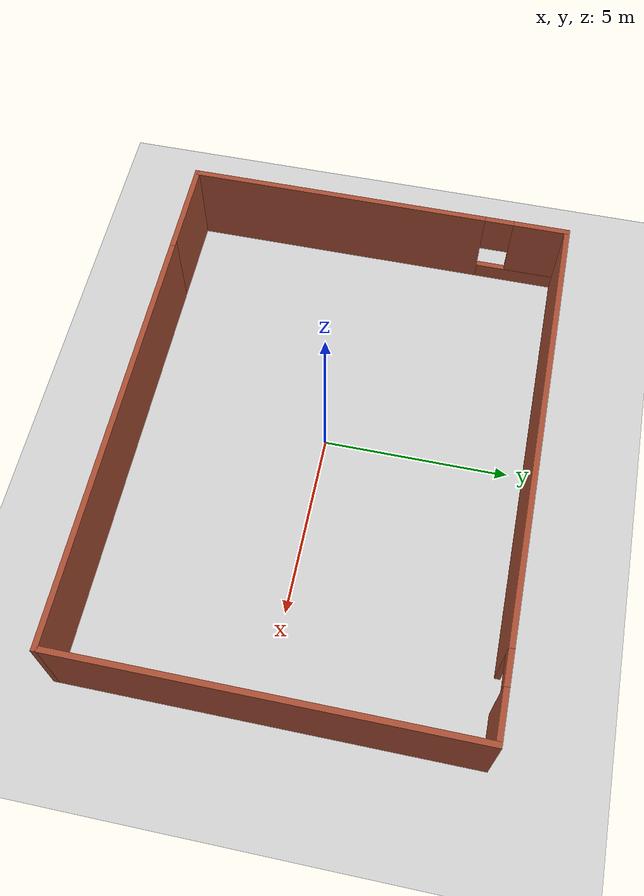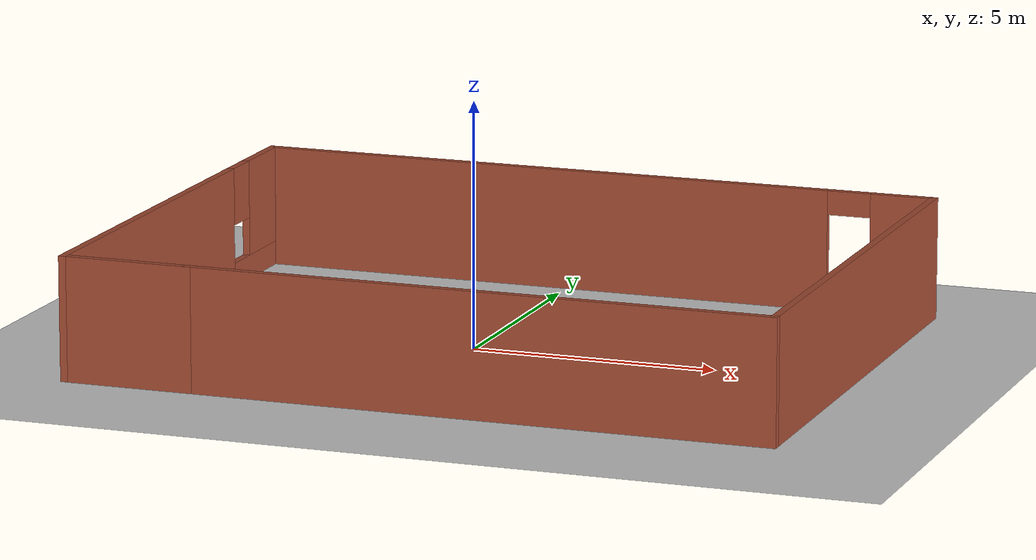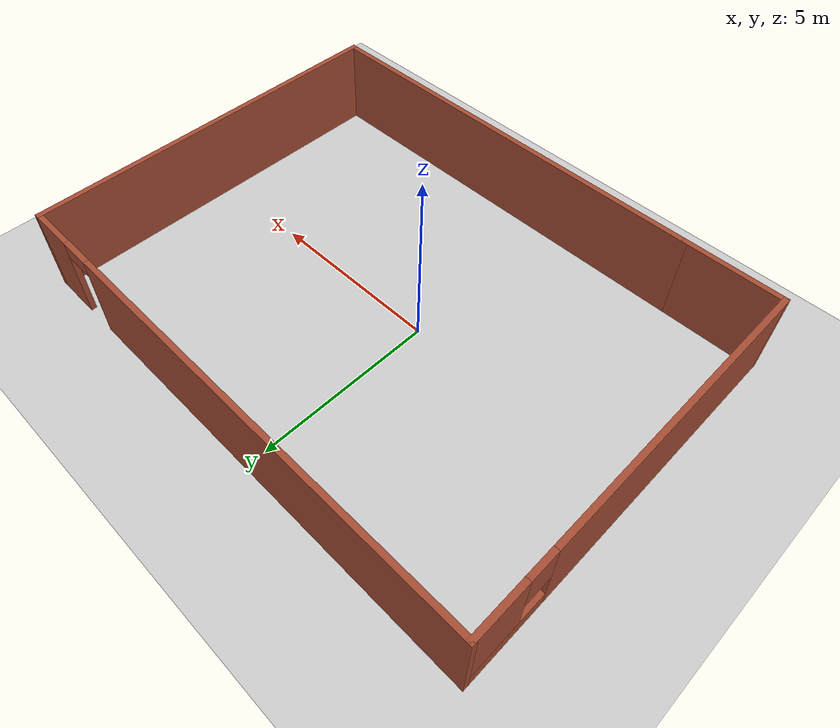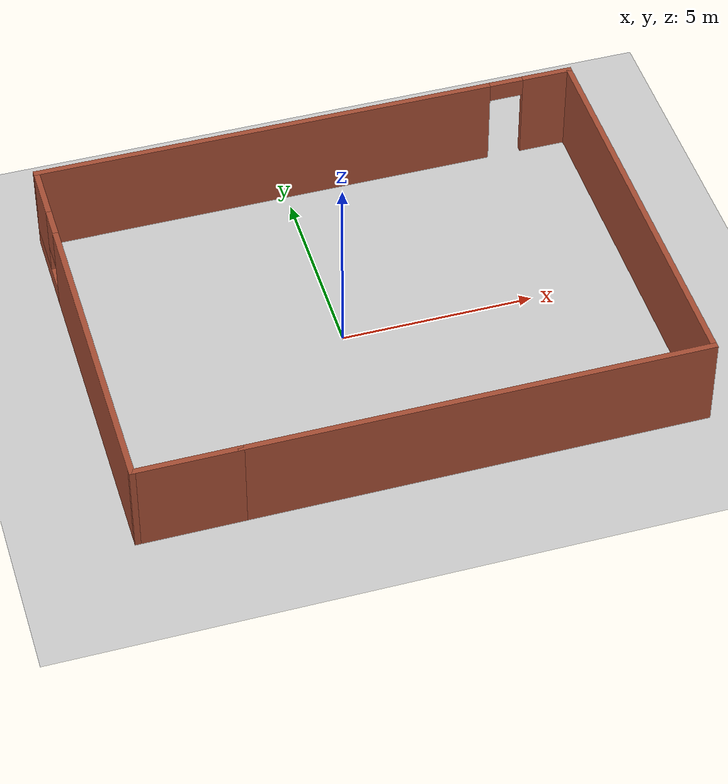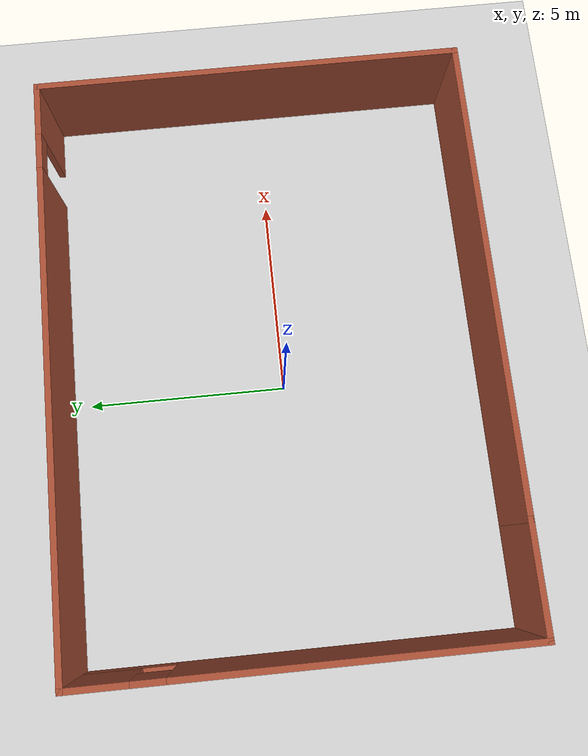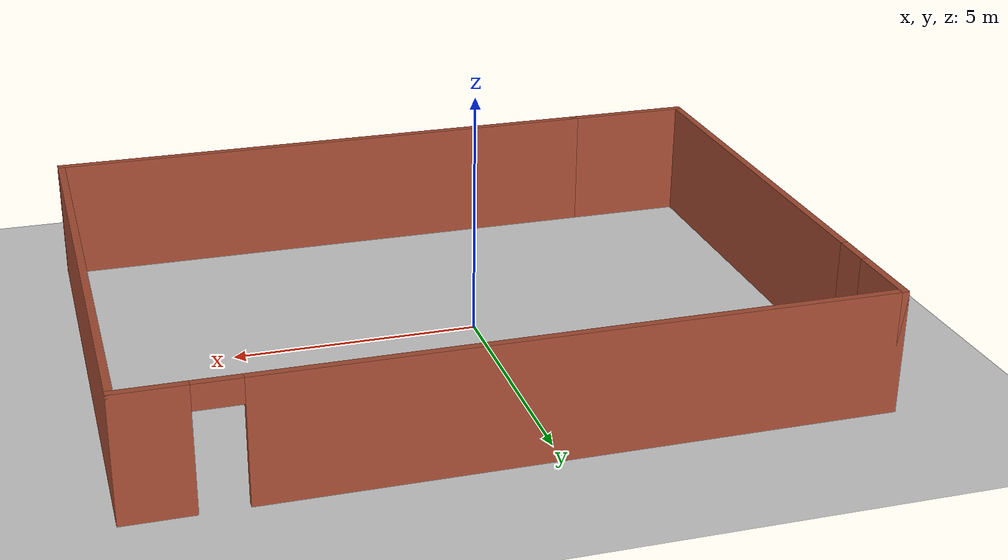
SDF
<sdf version="1.7">
 <world name="default">
  <light name="sun" type="directional">
   <pose>0 0 10 0 -0 0</pose>
   <diffuse>0.8 0.8 0.8 1</diffuse>
   <specular>0.2 0.2 0.2 1</specular>
   <attenuation>
    <range>1000</range>
    <constant>0.9</constant>
    <linear>0.01</linear>
    <quadratic>0.001</quadratic>
   </attenuation>
   <direction>-0.5 0.1 -0.9</direction>
   <spot><inner_angle>0</inner_angle><outer_angle>0</outer_angle><falloff>0</falloff></spot>
  </light>
  <model name="ground_plane">
   <static>1</static>
   <link name="link">
    <collision name="collision">
     <geometry><plane><normal>0 0 1</normal><size>100 100</size></plane></geometry>
     <surface>
      <contact><collide_bitmask>65535</collide_bitmask></contact>
      <friction><ode><mu>100</mu><mu2>50</mu2></ode></friction>
     </surface>
    </collision>
    <visual name="visual">
     <cast_shadows>0</cast_shadows>
     <geometry><plane><normal>0 0 1</normal><size>100 100</size></plane></geometry>
     <material>
      <script><uri>file://media/materials/scripts/gazebo.material</uri><name>Gazebo/Grey</name></script>
     </material>
    </visual>
   </link>
  </model>
  <gravity>0 0 -9.8</gravity>
  <magnetic_field>6e-06 2.3e-05 -4.2e-05</magnetic_field>
  <atmosphere type="adiabatic"/>
  <physics type="ode">
   <max_step_size>0.001</max_step_size>
   <real_time_factor>1</real_time_factor>
   <real_time_update_rate>1000</real_time_update_rate>
  </physics>
  <scene><ambient>0.4 0.4 0.4 1</ambient><background>0.7 0.7 0.7 1</background><shadows>1</shadows></scene>
  <spherical_coordinates>
   <surface_model>EARTH_WGS84</surface_model>
   <latitude_deg>0</latitude_deg>
   <longitude_deg>0</longitude_deg>
   <elevation>0</elevation>
   <heading_deg>0</heading_deg>
  </spherical_coordinates>
  <model name="basic_room">
   <pose>0.636645 0.193252 0 0 -0 0</pose>
   <link name="Wall_3">
    <collision name="Wall_3_Collision">
     <geometry><box><size>2.75 0.15 2.5</size></box></geometry>
     <pose>0 0 1.25 0 -0 0</pose>
    </collision>
    <visual name="Wall_3_Visual">
     <pose>0 0 1.25 0 -0 0</pose>
     <geometry><box><size>2.75 0.15 2.5</size></box></geometry>
     <material>
      <script><uri>file://media/materials/scripts/gazebo.material</uri><name>Gazebo/Bricks</name></script>
      <ambient>1 1 1 1</ambient>
     </material>
     <meta><layer>0</layer></meta>
    </visual>
    <pose>-5.875 -5.3 0 0 -0 3.14159</pose>
   </link>
   <link name="Wall_4">
    <pose>-7.175 -0 0 0 -0 1.5708</pose>
    <visual name="Wall_4_Visual_0">
     <pose>-1.18312 0 1.25 0 -0 0</pose>
     <geometry><box><size>8.38376 0.15 2.5</size></box></geometry>
     <material>
      <script><uri>file://media/materials/scripts/gazebo.material</uri><name>Gazebo/Bricks</name></script>
      <ambient>1 1 1 1</ambient>
     </material>
     <meta><layer>0</layer></meta>
    </visual>
    <collision name="Wall_4_Collision_0">
     <geometry><box><size>8.38376 0.15 2.5</size></box></geometry>
     <pose>-1.18312 0 1.25 0 -0 0</pose>
    </collision>
    <visual name="Wall_4_Visual_1">
     <pose>4.19188 0 0.25 0 -0 0</pose>
     <geometry><box><size>2.36624 0.15 0.5</size></box></geometry>
     <material>
      <script><uri>file://media/materials/scripts/gazebo.material</uri><name>Gazebo/Bricks</name></script>
      <ambient>1 1 1 1</ambient>
     </material>
     <meta><layer>0</layer></meta>
    </visual>
    <collision name="Wall_4_Collision_1">
     <geometry><box><size>2.36624 0.15 0.5</size></box></geometry>
     <pose>4.19188 0 0.25 0 -0 0</pose>
    </collision>
    <visual name="Wall_4_Visual_2">
     <pose>4.59188 0 1.5 0 -0 0</pose>
     <geometry><box><size>1.56624 0.15 2</size></box></geometry>
     <material>
      <script><uri>file://media/materials/scripts/gazebo.material</uri><name>Gazebo/Bricks</name></script>
      <ambient>1 1 1 1</ambient>
     </material>
     <meta><layer>0</layer></meta>
    </visual>
    <collision name="Wall_4_Collision_2">
     <geometry><box><size>1.56624 0.15 2</size></box></geometry>
     <pose>4.59188 0 1.5 0 -0 0</pose>
    </collision>
    <visual name="Wall_4_Visual_3">
     <pose>3.40876 0 1.9 0 -0 0</pose>
     <geometry><box><size>0.8 0.15 1.2</size></box></geometry>
     <material>
      <script><uri>file://media/materials/scripts/gazebo.material</uri><name>Gazebo/Bricks</name></script>
      <ambient>1 1 1 1</ambient>
     </material>
     <meta><layer>0</layer></meta>
    </visual>
    <collision name="Wall_4_Collision_3">
     <geometry><box><size>0.8 0.15 1.2</size></box></geometry>
     <pose>3.40876 0 1.9 0 -0 0</pose>
    </collision>
   </link>
   <link name="Wall_5">
    <pose>0 5.3 0 0 -0 0</pose>
    <visual name="Wall_5_Visual_0">
     <pose>-1.13887 0 1.25 0 -0 0</pose>
     <geometry><box><size>12.2223 0.15 2.5</size></box></geometry>
     <material>
      <script><uri>file://media/materials/scripts/gazebo.material</uri><name>Gazebo/Bricks</name></script>
      <ambient>1 1 1 1</ambient>
     </material>
     <meta><layer>0</layer></meta>
    </visual>
    <collision name="Wall_5_Collision_0">
     <geometry><box><size>12.2223 0.15 2.5</size></box></geometry>
     <pose>-1.13887 0 1.25 0 -0 0</pose>
    </collision>
    <visual name="Wall_5_Visual_1">
     <pose>6.56113 0 1.25 0 -0 0</pose>
     <geometry><box><size>1.37774 0.15 2.5</size></box></geometry>
     <material>
      <script><uri>file://media/materials/scripts/gazebo.material</uri><name>Gazebo/Bricks</name></script>
      <ambient>1 1 1 1</ambient>
     </material>
     <meta><layer>0</layer></meta>
    </visual>
    <collision name="Wall_5_Collision_1">
     <geometry><box><size>1.37774 0.15 2.5</size></box></geometry>
     <pose>6.56113 0 1.25 0 -0 0</pose>
    </collision>
    <visual name="Wall_5_Visual_2">
     <pose>5.42226 0 2.25 0 -0 0</pose>
     <geometry><box><size>0.9 0.15 0.5</size></box></geometry>
     <material>
      <script><uri>file://media/materials/scripts/gazebo.material</uri><name>Gazebo/Bricks</name></script>
      <ambient>1 1 1 1</ambient>
     </material>
     <meta><layer>0</layer></meta>
    </visual>
    <collision name="Wall_5_Collision_2">
     <geometry><box><size>0.9 0.15 0.5</size></box></geometry>
     <pose>5.42226 0 2.25 0 -0 0</pose>
    </collision>
   </link>
   <link name="Wall_6">
    <collision name="Wall_6_Collision">
     <geometry><box><size>10.75 0.15 2.5</size></box></geometry>
     <pose>0 0 1.25 0 -0 0</pose>
    </collision>
    <visual name="Wall_6_Visual">
     <pose>0 0 1.25 0 -0 0</pose>
     <geometry><box><size>10.75 0.15 2.5</size></box></geometry>
     <material>
      <script><uri>file://media/materials/scripts/gazebo.material</uri><name>Gazebo/Bricks</name></script>
      <ambient>1 1 1 1</ambient>
     </material>
     <meta><layer>0</layer></meta>
    </visual>
    <pose>7.175 -0 0 0 -0 -1.5708</pose>
   </link>
   <link name="Wall_7">
    <collision name="Wall_7_Collision">
     <geometry><box><size>11.9 0.15 2.5</size></box></geometry>
     <pose>0 0 1.25 0 -0 0</pose>
    </collision>
    <visual name="Wall_7_Visual">
     <pose>0 0 1.25 0 -0 0</pose>
     <geometry><box><size>11.9 0.15 2.5</size></box></geometry>
     <material>
      <script><uri>file://media/materials/scripts/gazebo.material</uri><name>Gazebo/Bricks</name></script>
      <ambient>1 1 1 1</ambient>
     </material>
     <meta><layer>0</layer></meta>
    </visual>
    <pose>1.3 -5.3 0 0 -0 3.14159</pose>
   </link>
   <static>1</static>
  </model>
 </world>
</sdf>
